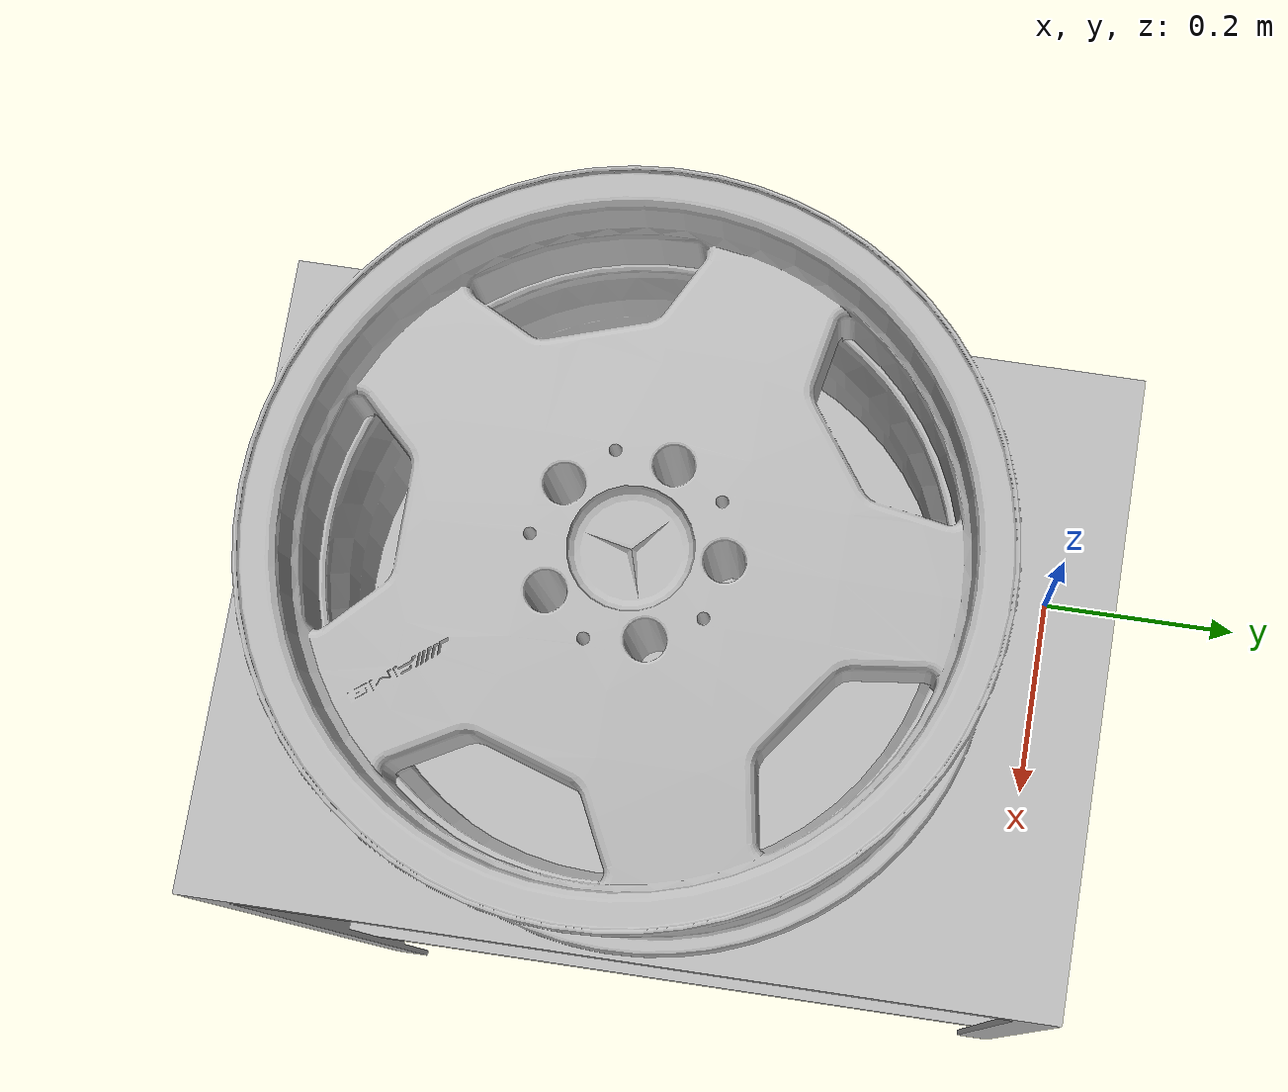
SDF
<?xml version="1.0" ?>
<sdf version="1.6">
  <model name="adjustable_height_table_w_wheel">
    <static>true</static>
    <link name="link">
      <visual name="visual">
        <geometry>
          <mesh>
            <uri>model://adjustable_height_table_w_wheel/meshes/adjustable_height_table_w_wheel.obj</uri>
          </mesh>
        </geometry>
      </visual>
      <collision name="collision">
        <geometry>
          <mesh>
            <uri>model://adjustable_height_table_w_wheel/meshes/adjustable_height_table_w_wheel.obj</uri>
          </mesh>
        </geometry>
      </collision>
    </link>
  </model>
</sdf>
